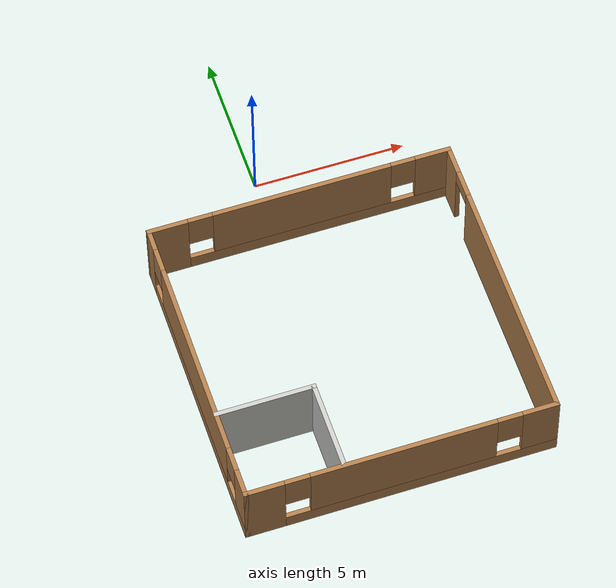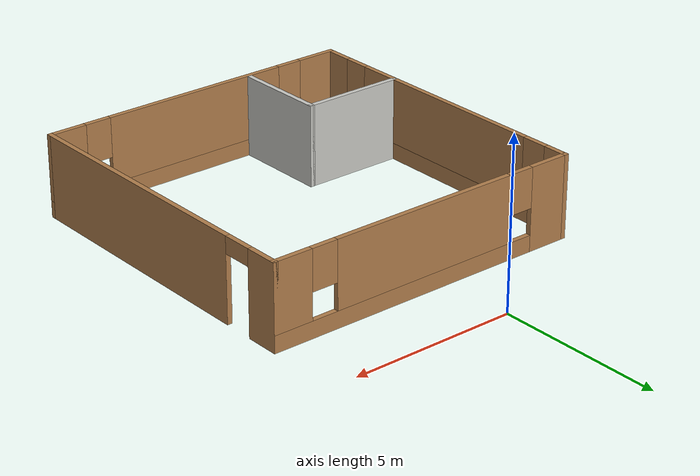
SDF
<?xml version='1.0'?>
<sdf version='1.6'>
  <model name='building'>
    <pose frame=''>0.805 -7.135 0 0 -0 0</pose>
    <link name='Wall_64'>
      <pose frame=''>0 4.925 0 0 -0 0</pose>
      <visual name='Wall_64_Visual_0'>
        <pose frame=''>-4.3325 0 1.25 0 -0 0</pose>
        <geometry>
          <box>
            <size>1.335 0.15 2.5</size>
          </box>
        </geometry>
        <material>
          <script>
            <uri>file://media/materials/scripts/gazebo.material</uri>
            <name>Gazebo/Wood</name>
          </script>
          <ambient>1 1 1 1</ambient>
        </material>
        <meta>
          <layer>0</layer>
        </meta>
      </visual>
      <collision name='Wall_64_Collision_0'>
        <geometry>
          <box>
            <size>1.335 0.15 2.5</size>
          </box>
        </geometry>
        <pose frame=''>-4.3325 0 1.25 0 -0 0</pose>
      </collision>
      <visual name='Wall_64_Visual_1'>
        <pose frame=''>0.6675 0 0.25 0 -0 0</pose>
        <geometry>
          <box>
            <size>8.665 0.15 0.5</size>
          </box>
        </geometry>
        <material>
          <script>
            <uri>file://media/materials/scripts/gazebo.material</uri>
            <name>Gazebo/Wood</name>
          </script>
          <ambient>1 1 1 1</ambient>
        </material>
        <meta>
          <layer>0</layer>
        </meta>
      </visual>
      <collision name='Wall_64_Collision_1'>
        <geometry>
          <box>
            <size>8.665 0.15 0.5</size>
          </box>
        </geometry>
        <pose frame=''>0.6675 0 0.25 0 -0 0</pose>
      </collision>
      <visual name='Wall_64_Visual_2'>
        <pose frame=''>0.065 0 1.5 0 -0 0</pose>
        <geometry>
          <box>
            <size>5.86 0.15 2</size>
          </box>
        </geometry>
        <material>
          <script>
            <uri>file://media/materials/scripts/gazebo.material</uri>
            <name>Gazebo/Wood</name>
          </script>
          <ambient>1 1 1 1</ambient>
        </material>
        <meta>
          <layer>0</layer>
        </meta>
      </visual>
      <collision name='Wall_64_Collision_2'>
        <geometry>
          <box>
            <size>5.86 0.15 2</size>
          </box>
        </geometry>
        <pose frame=''>0.065 0 1.5 0 -0 0</pose>
      </collision>
      <visual name='Wall_64_Visual_3'>
        <pose frame=''>4.3975 0 1.5 0 -0 0</pose>
        <geometry>
          <box>
            <size>1.205 0.15 2</size>
          </box>
        </geometry>
        <material>
          <script>
            <uri>file://media/materials/scripts/gazebo.material</uri>
            <name>Gazebo/Wood</name>
          </script>
          <ambient>1 1 1 1</ambient>
        </material>
        <meta>
          <layer>0</layer>
        </meta>
      </visual>
      <collision name='Wall_64_Collision_3'>
        <geometry>
          <box>
            <size>1.205 0.15 2</size>
          </box>
        </geometry>
        <pose frame=''>4.3975 0 1.5 0 -0 0</pose>
      </collision>
      <visual name='Wall_64_Visual_4'>
        <pose frame=''>-3.265 0 1.9 0 -0 0</pose>
        <geometry>
          <box>
            <size>0.8 0.15 1.2</size>
          </box>
        </geometry>
        <material>
          <script>
            <uri>file://media/materials/scripts/gazebo.material</uri>
            <name>Gazebo/Wood</name>
          </script>
          <ambient>1 1 1 1</ambient>
        </material>
        <meta>
          <layer>0</layer>
        </meta>
      </visual>
      <collision name='Wall_64_Collision_4'>
        <geometry>
          <box>
            <size>0.8 0.15 1.2</size>
          </box>
        </geometry>
        <pose frame=''>-3.265 0 1.9 0 -0 0</pose>
      </collision>
      <visual name='Wall_64_Visual_5'>
        <pose frame=''>3.395 0 1.9 0 -0 0</pose>
        <geometry>
          <box>
            <size>0.8 0.15 1.2</size>
          </box>
        </geometry>
        <material>
          <script>
            <uri>file://media/materials/scripts/gazebo.material</uri>
            <name>Gazebo/Wood</name>
          </script>
          <ambient>1 1 1 1</ambient>
        </material>
        <meta>
          <layer>0</layer>
        </meta>
      </visual>
      <collision name='Wall_64_Collision_5'>
        <geometry>
          <box>
            <size>0.8 0.15 1.2</size>
          </box>
        </geometry>
        <pose frame=''>3.395 0 1.9 0 -0 0</pose>
      </collision>
    </link>
    <link name='Wall_66'>
      <pose frame=''>-4.925 0 0 0 0 -1.5708</pose>
      <visual name='Wall_66_Visual_0'>
        <pose frame=''>-4.6125 0 1.25 0 -0 0</pose>
        <geometry>
          <box>
            <size>0.775 0.15 2.5</size>
          </box>
        </geometry>
        <material>
          <script>
            <uri>file://media/materials/scripts/gazebo.material</uri>
            <name>Gazebo/Wood</name>
          </script>
          <ambient>1 1 1 1</ambient>
        </material>
        <meta>
          <layer>0</layer>
        </meta>
      </visual>
      <collision name='Wall_66_Collision_0'>
        <geometry>
          <box>
            <size>0.775 0.15 2.5</size>
          </box>
        </geometry>
        <pose frame=''>-4.6125 0 1.25 0 -0 0</pose>
      </collision>
      <visual name='Wall_66_Visual_1'>
        <pose frame=''>0.3875 0 0.25 0 -0 0</pose>
        <geometry>
          <box>
            <size>9.225 0.15 0.5</size>
          </box>
        </geometry>
        <material>
          <script>
            <uri>file://media/materials/scripts/gazebo.material</uri>
            <name>Gazebo/Wood</name>
          </script>
          <ambient>1 1 1 1</ambient>
        </material>
        <meta>
          <layer>0</layer>
        </meta>
      </visual>
      <collision name='Wall_66_Collision_1'>
        <geometry>
          <box>
            <size>9.225 0.15 0.5</size>
          </box>
        </geometry>
        <pose frame=''>0.3875 0 0.25 0 -0 0</pose>
      </collision>
      <visual name='Wall_66_Visual_2'>
        <pose frame=''>-0.085 0 1.5 0 -0 0</pose>
        <geometry>
          <box>
            <size>6.68 0.15 2</size>
          </box>
        </geometry>
        <material>
          <script>
            <uri>file://media/materials/scripts/gazebo.material</uri>
            <name>Gazebo/Wood</name>
          </script>
          <ambient>1 1 1 1</ambient>
        </material>
        <meta>
          <layer>0</layer>
        </meta>
      </visual>
      <collision name='Wall_66_Collision_2'>
        <geometry>
          <box>
            <size>6.68 0.15 2</size>
          </box>
        </geometry>
        <pose frame=''>-0.085 0 1.5 0 -0 0</pose>
      </collision>
      <visual name='Wall_66_Visual_3'>
        <pose frame=''>4.5275 0 1.5 0 -0 0</pose>
        <geometry>
          <box>
            <size>0.945 0.15 2</size>
          </box>
        </geometry>
        <material>
          <script>
            <uri>file://media/materials/scripts/gazebo.material</uri>
            <name>Gazebo/Wood</name>
          </script>
          <ambient>1 1 1 1</ambient>
        </material>
        <meta>
          <layer>0</layer>
        </meta>
      </visual>
      <collision name='Wall_66_Collision_3'>
        <geometry>
          <box>
            <size>0.945 0.15 2</size>
          </box>
        </geometry>
        <pose frame=''>4.5275 0 1.5 0 -0 0</pose>
      </collision>
      <visual name='Wall_66_Visual_4'>
        <pose frame=''>-3.825 0 1.9 0 -0 0</pose>
        <geometry>
          <box>
            <size>0.8 0.15 1.2</size>
          </box>
        </geometry>
        <material>
          <script>
            <uri>file://media/materials/scripts/gazebo.material</uri>
            <name>Gazebo/Wood</name>
          </script>
          <ambient>1 1 1 1</ambient>
        </material>
        <meta>
          <layer>0</layer>
        </meta>
      </visual>
      <collision name='Wall_66_Collision_4'>
        <geometry>
          <box>
            <size>0.8 0.15 1.2</size>
          </box>
        </geometry>
        <pose frame=''>-3.825 0 1.9 0 -0 0</pose>
      </collision>
      <visual name='Wall_66_Visual_5'>
        <pose frame=''>3.655 0 1.9 0 -0 0</pose>
        <geometry>
          <box>
            <size>0.8 0.15 1.2</size>
          </box>
        </geometry>
        <material>
          <script>
            <uri>file://media/materials/scripts/gazebo.material</uri>
            <name>Gazebo/Wood</name>
          </script>
          <ambient>1 1 1 1</ambient>
        </material>
        <meta>
          <layer>0</layer>
        </meta>
      </visual>
      <collision name='Wall_66_Collision_5'>
        <geometry>
          <box>
            <size>0.8 0.15 1.2</size>
          </box>
        </geometry>
        <pose frame=''>3.655 0 1.9 0 -0 0</pose>
      </collision>
    </link>
    <link name='Wall_68'>
      <pose frame=''>4.925 0 0 0 0 -1.5708</pose>
      <visual name='Wall_68_Visual_0'>
        <pose frame=''>-4.4925 0 1.25 0 -0 0</pose>
        <geometry>
          <box>
            <size>1.015 0.15 2.5</size>
          </box>
        </geometry>
        <material>
          <script>
            <uri>file://media/materials/scripts/gazebo.material</uri>
            <name>Gazebo/Wood</name>
          </script>
          <ambient>1 1 1 1</ambient>
        </material>
        <meta>
          <layer>0</layer>
        </meta>
      </visual>
      <collision name='Wall_68_Collision_0'>
        <geometry>
          <box>
            <size>1.015 0.15 2.5</size>
          </box>
        </geometry>
        <pose frame=''>-4.4925 0 1.25 0 -0 0</pose>
      </collision>
      <visual name='Wall_68_Visual_1'>
        <pose frame=''>0.9575 0 1.25 0 -0 0</pose>
        <geometry>
          <box>
            <size>8.085 0.15 2.5</size>
          </box>
        </geometry>
        <material>
          <script>
            <uri>file://media/materials/scripts/gazebo.material</uri>
            <name>Gazebo/Wood</name>
          </script>
          <ambient>1 1 1 1</ambient>
        </material>
        <meta>
          <layer>0</layer>
        </meta>
      </visual>
      <collision name='Wall_68_Collision_1'>
        <geometry>
          <box>
            <size>8.085 0.15 2.5</size>
          </box>
        </geometry>
        <pose frame=''>0.9575 0 1.25 0 -0 0</pose>
      </collision>
      <visual name='Wall_68_Visual_2'>
        <pose frame=''>-3.535 0 2.25 0 -0 0</pose>
        <geometry>
          <box>
            <size>0.9 0.15 0.5</size>
          </box>
        </geometry>
        <material>
          <script>
            <uri>file://media/materials/scripts/gazebo.material</uri>
            <name>Gazebo/Wood</name>
          </script>
          <ambient>1 1 1 1</ambient>
        </material>
        <meta>
          <layer>0</layer>
        </meta>
      </visual>
      <collision name='Wall_68_Collision_2'>
        <geometry>
          <box>
            <size>0.9 0.15 0.5</size>
          </box>
        </geometry>
        <pose frame=''>-3.535 0 2.25 0 -0 0</pose>
      </collision>
    </link>
    <link name='Wall_70'>
      <pose frame=''>0 -4.925 0 0 -0 0</pose>
      <visual name='Wall_70_Visual_0'>
        <pose frame=''>-4.3525 0 1.25 0 -0 0</pose>
        <geometry>
          <box>
            <size>1.295 0.15 2.5</size>
          </box>
        </geometry>
        <material>
          <script>
            <uri>file://media/materials/scripts/gazebo.material</uri>
            <name>Gazebo/Wood</name>
          </script>
          <ambient>1 1 1 1</ambient>
        </material>
        <meta>
          <layer>0</layer>
        </meta>
      </visual>
      <collision name='Wall_70_Collision_0'>
        <geometry>
          <box>
            <size>1.295 0.15 2.5</size>
          </box>
        </geometry>
        <pose frame=''>-4.3525 0 1.25 0 -0 0</pose>
      </collision>
      <visual name='Wall_70_Visual_1'>
        <pose frame=''>0.6475 0 0.25 0 -0 0</pose>
        <geometry>
          <box>
            <size>8.705 0.15 0.5</size>
          </box>
        </geometry>
        <material>
          <script>
            <uri>file://media/materials/scripts/gazebo.material</uri>
            <name>Gazebo/Wood</name>
          </script>
          <ambient>1 1 1 1</ambient>
        </material>
        <meta>
          <layer>0</layer>
        </meta>
      </visual>
      <collision name='Wall_70_Collision_1'>
        <geometry>
          <box>
            <size>8.705 0.15 0.5</size>
          </box>
        </geometry>
        <pose frame=''>0.6475 0 0.25 0 -0 0</pose>
      </collision>
      <visual name='Wall_70_Visual_2'>
        <pose frame=''>0.06 0 1.5 0 -0 0</pose>
        <geometry>
          <box>
            <size>5.93 0.15 2</size>
          </box>
        </geometry>
        <material>
          <script>
            <uri>file://media/materials/scripts/gazebo.material</uri>
            <name>Gazebo/Wood</name>
          </script>
          <ambient>1 1 1 1</ambient>
        </material>
        <meta>
          <layer>0</layer>
        </meta>
      </visual>
      <collision name='Wall_70_Collision_2'>
        <geometry>
          <box>
            <size>5.93 0.15 2</size>
          </box>
        </geometry>
        <pose frame=''>0.06 0 1.5 0 -0 0</pose>
      </collision>
      <visual name='Wall_70_Visual_3'>
        <pose frame=''>4.4125 0 1.5 0 -0 0</pose>
        <geometry>
          <box>
            <size>1.175 0.15 2</size>
          </box>
        </geometry>
        <material>
          <script>
            <uri>file://media/materials/scripts/gazebo.material</uri>
            <name>Gazebo/Wood</name>
          </script>
          <ambient>1 1 1 1</ambient>
        </material>
        <meta>
          <layer>0</layer>
        </meta>
      </visual>
      <collision name='Wall_70_Collision_3'>
        <geometry>
          <box>
            <size>1.175 0.15 2</size>
          </box>
        </geometry>
        <pose frame=''>4.4125 0 1.5 0 -0 0</pose>
      </collision>
      <visual name='Wall_70_Visual_4'>
        <pose frame=''>-3.305 0 1.9 0 -0 0</pose>
        <geometry>
          <box>
            <size>0.8 0.15 1.2</size>
          </box>
        </geometry>
        <material>
          <script>
            <uri>file://media/materials/scripts/gazebo.material</uri>
            <name>Gazebo/Wood</name>
          </script>
          <ambient>1 1 1 1</ambient>
        </material>
        <meta>
          <layer>0</layer>
        </meta>
      </visual>
      <collision name='Wall_70_Collision_4'>
        <geometry>
          <box>
            <size>0.8 0.15 1.2</size>
          </box>
        </geometry>
        <pose frame=''>-3.305 0 1.9 0 -0 0</pose>
      </collision>
      <visual name='Wall_70_Visual_5'>
        <pose frame=''>3.425 0 1.9 0 -0 0</pose>
        <geometry>
          <box>
            <size>0.8 0.15 1.2</size>
          </box>
        </geometry>
        <material>
          <script>
            <uri>file://media/materials/scripts/gazebo.material</uri>
            <name>Gazebo/Wood</name>
          </script>
          <ambient>1 1 1 1</ambient>
        </material>
        <meta>
          <layer>0</layer>
        </meta>
      </visual>
      <collision name='Wall_70_Collision_5'>
        <geometry>
          <box>
            <size>0.8 0.15 1.2</size>
          </box>
        </geometry>
        <pose frame=''>3.425 0 1.9 0 -0 0</pose>
      </collision>
    </link>
    <link name='Wall_96'>
      <collision name='Wall_96_Collision'>
        <geometry>
          <box>
            <size>3.25 0.15 2.5</size>
          </box>
        </geometry>
        <pose frame=''>0 0 1.25 0 -0 0</pose>
      </collision>
      <visual name='Wall_96_Visual'>
        <pose frame=''>0 0 1.25 0 -0 0</pose>
        <geometry>
          <box>
            <size>3.25 0.15 2.5</size>
          </box>
        </geometry>
        <material>
          <script>
            <uri>file://media/materials/scripts/gazebo.material</uri>
            <name>Gazebo/CeilingTiled</name>
          </script>
          <ambient>0 1 0 1</ambient>
        </material>
        <meta>
          <layer>0</layer>
        </meta>
      </visual>
      <pose frame=''>-3.375 -2.015 0 0 -0 0</pose>
    </link>
    <link name='Wall_99'>
      <collision name='Wall_99_Collision'>
        <geometry>
          <box>
            <size>3 0.15 2.5</size>
          </box>
        </geometry>
        <pose frame=''>0 0 1.25 0 -0 0</pose>
      </collision>
      <visual name='Wall_99_Visual'>
        <pose frame=''>0 0 1.25 0 -0 0</pose>
        <geometry>
          <box>
            <size>3 0.15 2.5</size>
          </box>
        </geometry>
        <material>
          <script>
            <uri>file://media/materials/scripts/gazebo.material</uri>
            <name>Gazebo/CeilingTiled</name>
          </script>
          <ambient>0 1 0 1</ambient>
        </material>
        <meta>
          <layer>0</layer>
        </meta>
      </visual>
      <pose frame=''>-1.825 -3.44 0 0 0 -1.5708</pose>
    </link>
    <static>1</static>
  </model>
</sdf>
